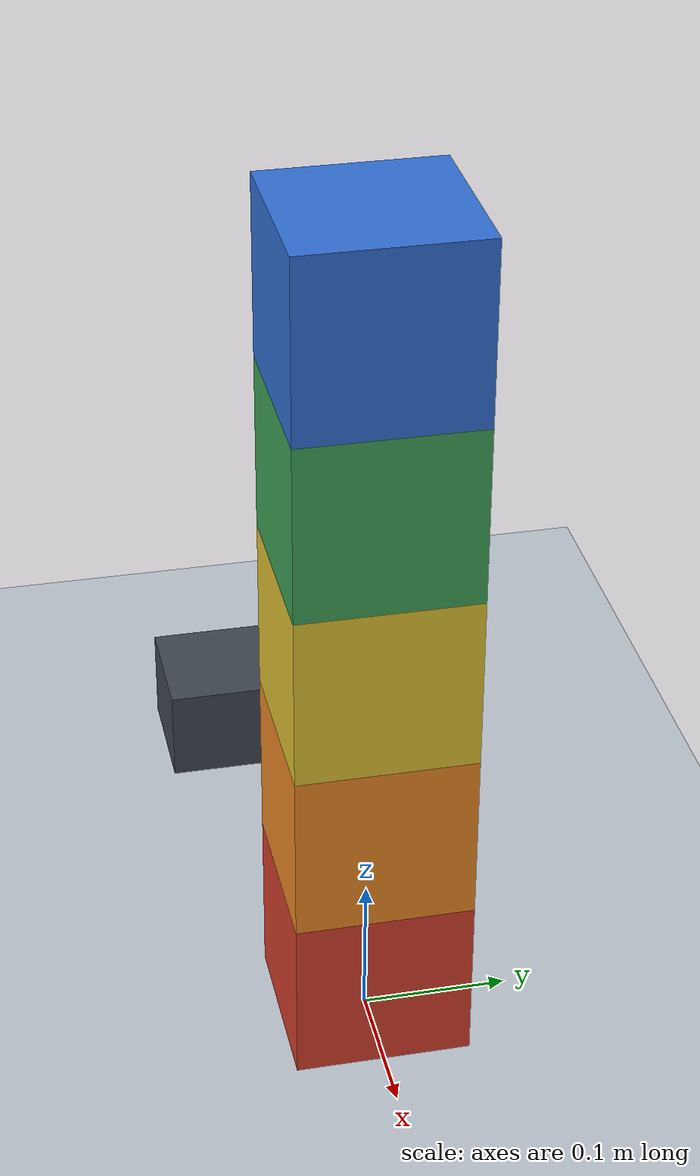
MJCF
<mujoco model="five_block_topple">
  <compiler angle="radian"/>
  <option timestep="0.002" gravity="0 0 -9.81" integrator="implicitfast" solver="Newton" iterations="100"/>
  <size njmax="1000" nconmax="200"/>

  <visual>
    <headlight ambient="0.4 0.4 0.4" diffuse="0.7 0.7 0.7" specular="0.2 0.2 0.2"/>
  </visual>

  <worldbody>
    <light name="main_light" pos="-1 -2 3" dir="0.3 0.5 -1"/>
    <camera name="overview" pos="1.8 -2.6 1.5" xyaxes="0.822 0.569 0 -0.215 0.311 0.926"/>

    <geom name="floor" type="plane" pos="0 0 0" size="3 3 0.1" friction="0.65 0.01 0.001" condim="3" rgba="0.75 0.78 0.82 1"/>

    <body name="block1" pos="0 0 0.06">
      <freejoint name="block1_free"/>
      <geom name="block1_box" type="box" size="0.06 0.06 0.06" mass="0.5" friction="0.65 0.01 0.001" condim="3" solref="0.01 1" rgba="0.85 0.25 0.18 1"/>
    </body>

    <body name="block2" pos="0 0 0.18">
      <freejoint name="block2_free"/>
      <geom name="block2_box" type="box" size="0.06 0.06 0.06" mass="0.5" friction="0.65 0.01 0.001" condim="3" solref="0.01 1" rgba="0.95 0.55 0.15 1"/>
    </body>

    <body name="block3" pos="0 0 0.30">
      <freejoint name="block3_free"/>
      <geom name="block3_box" type="box" size="0.06 0.06 0.06" mass="0.5" friction="0.65 0.01 0.001" condim="3" solref="0.01 1" rgba="0.90 0.78 0.20 1"/>
    </body>

    <body name="block4" pos="0 0 0.42">
      <freejoint name="block4_free"/>
      <geom name="block4_box" type="box" size="0.06 0.06 0.06" mass="0.5" friction="0.65 0.01 0.001" condim="3" solref="0.01 1" rgba="0.25 0.65 0.35 1"/>
    </body>

    <body name="block5" pos="0 0 0.54">
      <freejoint name="block5_free"/>
      <geom name="block5_box" type="box" size="0.06 0.06 0.06" mass="0.5" friction="0.65 0.01 0.001" condim="3" solref="0.01 1" rgba="0.20 0.45 0.85 1"/>
    </body>

    <body name="pusher" pos="-0.33 0 0.04">
      <joint name="pusher_slide" type="slide" axis="1 0 0" limited="true" range="0 0.70" damping="0.5"/>
      <geom name="pusher_box" type="box" size="0.045 0.09 0.035" mass="3" friction="0.65 0.01 0.001" condim="3" solref="0.01 1" rgba="0.25 0.28 0.32 1"/>
    </body>
  </worldbody>

  <actuator>
    <motor name="push_motor" joint="pusher_slide" gear="1" ctrllimited="true" ctrlrange="0 25"/>
  </actuator>

  <keyframe>
    <key name="start" qpos="0 0 0.06 1 0 0 0 0 0 0.18 1 0 0 0 0 0 0.30 1 0 0 0 0 0 0.42 1 0 0 0 0 0 0.54 1 0 0 0 0" ctrl="25"/>
  </keyframe>
</mujoco>
